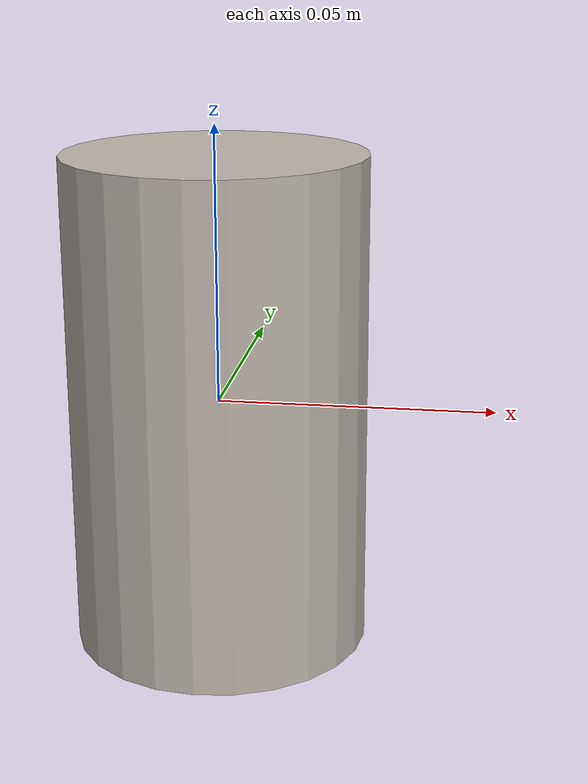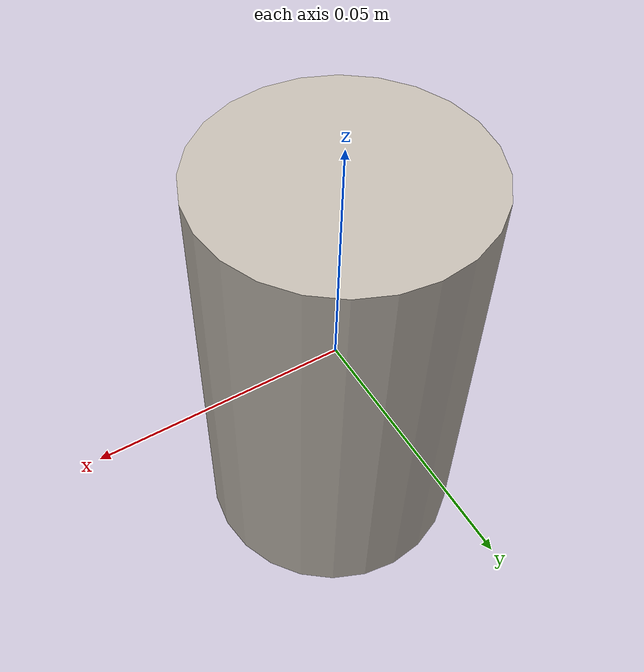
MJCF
<mujoco model="dutchcan">
  <asset>
    <texture file="textures/tallcan/dutchchips.png" name="tex-dutch"/>
    <material name="dutch" reflectance="0.7" texrepeat="5 5" texture="tex-dutch" texuniform="true"/>
  </asset>
  <worldbody>
    <body>
      <body name="collision">
        <geom pos="0 0 0" size="0.027 0.045" type="cylinder" solimp="0.998 0.998 0.001" solref="0.001 1" density="100" friction="0.95 0.3 0.1" material="dutch" group="1" condim="4"/>
      </body>

      <site rgba="1 0 0 0" size="0.005" pos="0 0 -0.08" name="bottom_site"/>
      <site rgba="0 1 0 0" size="0.005" pos="0 0 0.0" name="top_site"/>
      <site rgba="0 0 1 0" size="0.005" pos="0.06 0.06 0" name="horizontal_radius_site"/>
    </body>
  </worldbody>
</mujoco>
